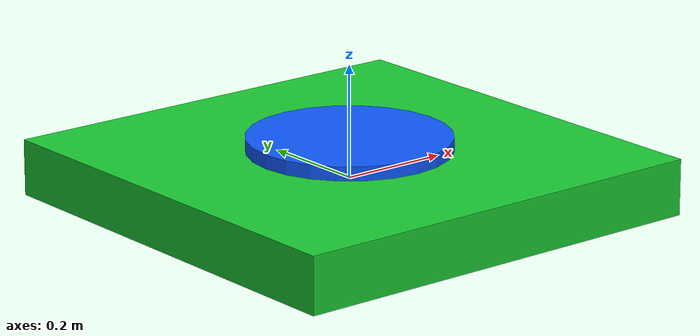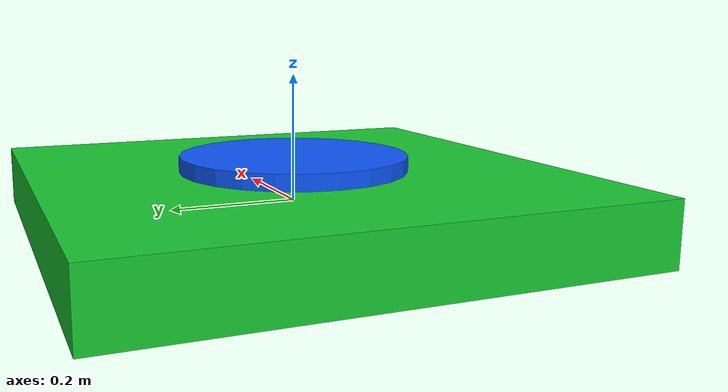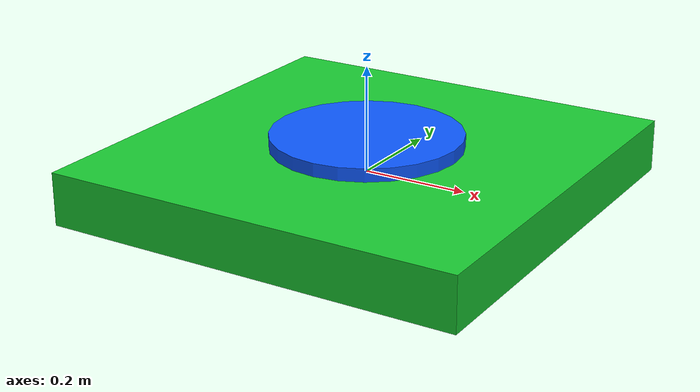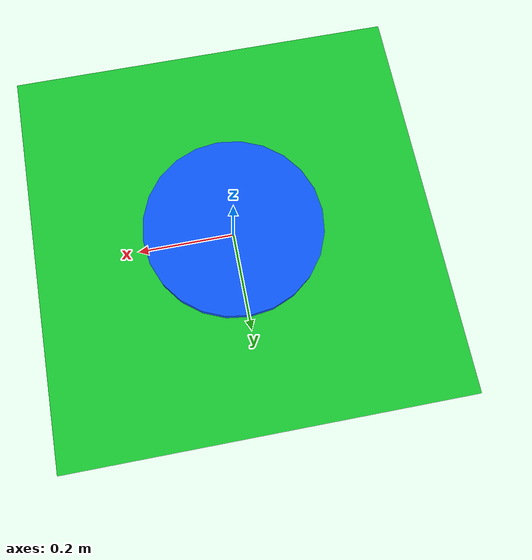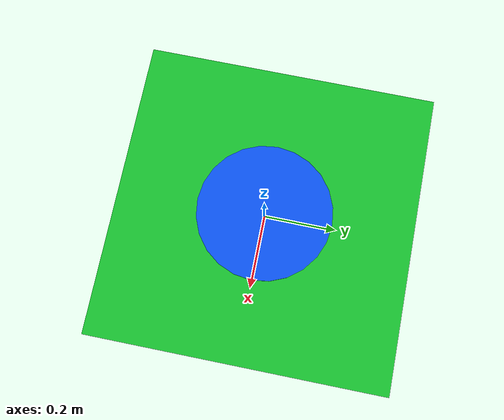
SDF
<?xml version="1.0"?>
<sdf version="1.10">
  <model name="smart_charger">

    <static>true</static>

    <link name="charger_link">

      <collision name="collision">
        <geometry>
          <box>
            <size>0.8 0.8 0.1</size>
          </box>
        </geometry>
      </collision>

      <visual name="base_visual">
        <geometry>
          <box>
            <size>0.8 0.8 0.1</size>
          </box>
        </geometry>
        <material>
          <ambient>0.05 0.45 0.1 1</ambient>
          <diffuse>0.1 0.8 0.2 1</diffuse>
        </material>
      </visual>

      <visual name="center_marker">
        <pose>0 0 0.06 0 0 0</pose>
        <geometry>
          <cylinder>
            <radius>0.18</radius>
            <length>0.03</length>
          </cylinder>
        </geometry>
        <material>
          <ambient>0.02 0.2 0.8 1</ambient>
          <diffuse>0.05 0.35 1.0 1</diffuse>
        </material>
      </visual>

      <inertial>
        <mass>5.0</mass>
        <inertia>
          <ixx>1</ixx>
          <iyy>1</iyy>
          <izz>1</izz>
          <ixy>0</ixy>
          <ixz>0</ixz>
          <iyz>0</iyz>
        </inertia>
      </inertial>

    </link>

  </model>
</sdf>
